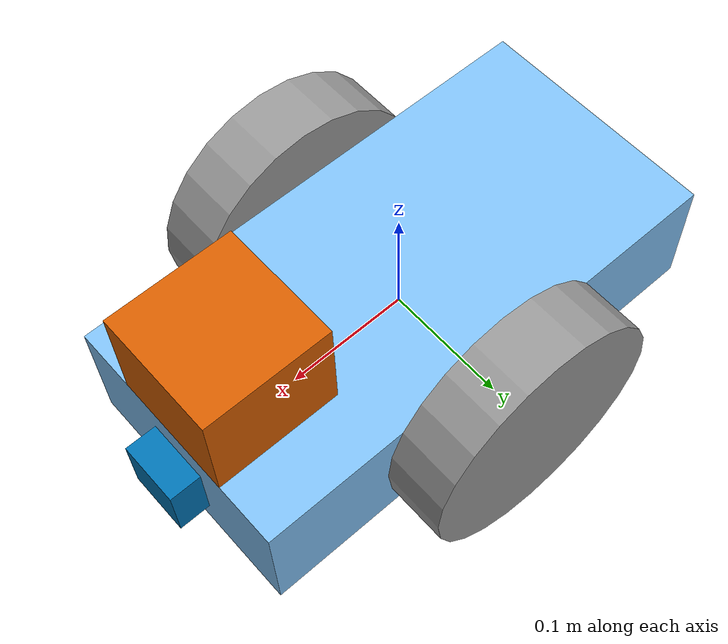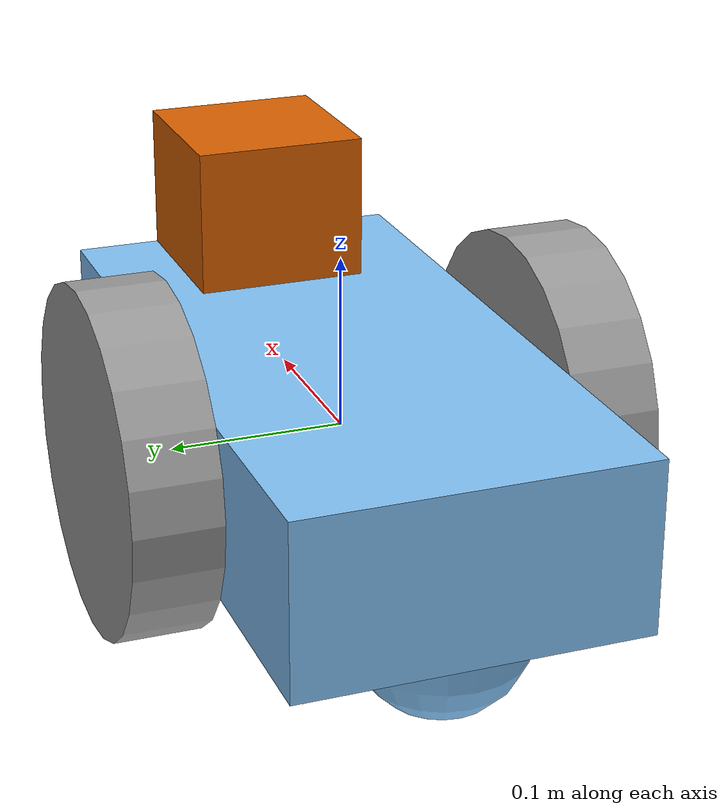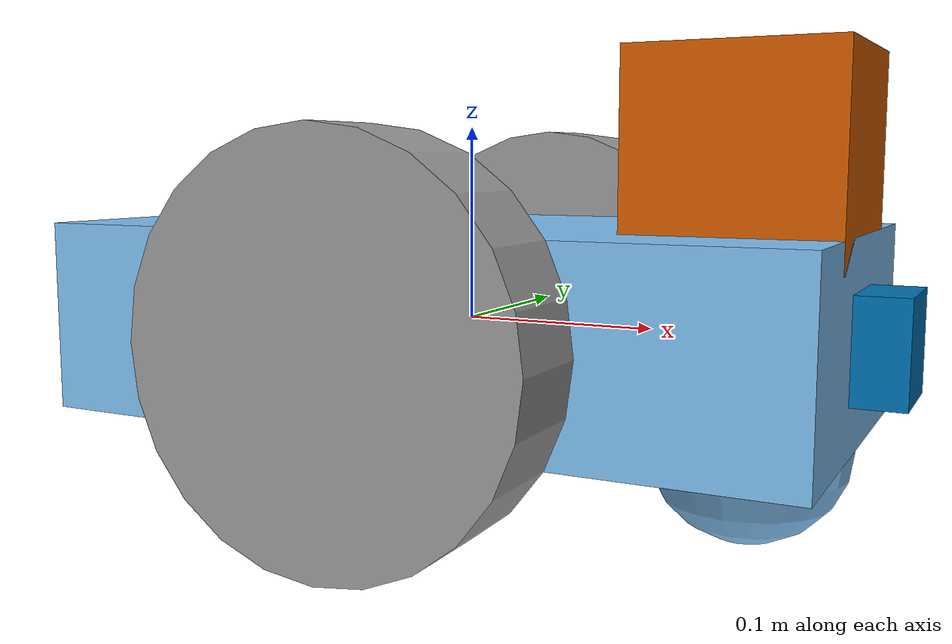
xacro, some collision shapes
<?xml version='1.0'?>

<robot name="track_robot" xmlns:xacro="http://www.ros.org/wiki/xacro">
<xacro:macro name="wheel" params="prefix x y z roll pitch yaw">
  <link name="${prefix}_wheel">
    <visual>
      <geometry>
        <cylinder radius="0.1" length="0.05"/>
      </geometry>
      <origin xyz="${x} ${y} ${z}" rpy=" ${roll} ${pitch} ${yaw}"/>
    </visual>
    <collision>
      <geometry>
        <cylinder radius="0.1" length="0.05"/>
      </geometry>
      <origin xyz="${x} ${y} ${z}" rpy=" ${roll} ${pitch} ${yaw}"/>
    </collision>
    <inertial>
     <mass value="5"/>
     <inertia ixx="0.1" ixy="0" ixz="0" iyy="0.1" iyz="0" izz="0.1"/>
    </inertial>
  </link>
  <gazebo reference="${prefix}_wheel">
    <material>Gazebo/Grey</material>
  </gazebo>
</xacro:macro>

<xacro:include filename="$(find track_robot)/urdf/track_robot.gazebo" />
  <link name="robot_footprint"></link>

  <joint name="robot_footprint_joint" type="fixed">
    <origin xyz="0 0 0" rpy="0 0 0" />
    <parent link="robot_footprint"/>
    <child link="chassis" />
  </joint>

  <link name='chassis'>
    <pose>0 0 0.1 0 0 0</pose>

    <inertial>
      <mass value="15.0"/>
      <origin xyz="0.0 0 0" rpy=" 0 0 0"/>
      <inertia
          ixx="0.1" ixy="0" ixz="0"
          iyy="0.1" iyz="0"
          izz="0.1"
      />
    </inertial>

    <collision name='collision'>
      <origin xyz="0 0 0" rpy=" 0 0 0"/>
      <geometry>
        <box size=".4 .2 .1"/>
      </geometry>
    </collision>

    <visual name='chassis_visual'>
      <origin xyz="0 0 0" rpy=" 0 0 0"/>
      <geometry>
        <box size=".4 .2 .1"/>
      </geometry>
    </visual>

    <collision name='back_caster_collision'>
      <origin xyz="-0.15 0 -0.05" rpy=" 0 0 0"/>
      <geometry>
        <sphere radius="0.0499"/>
      </geometry>
    </collision>

    <visual name='back_caster_visual'>
      <origin xyz="-0.15 0 -0.05" rpy=" 0 0 0"/>
      <geometry>
        <sphere radius="0.05"/>
      </geometry>
    </visual>

    <collision name='front_caster_collision'>
      <origin xyz="0.15 0 -0.05" rpy=" 0 0 0"/>
      <geometry>
        <sphere radius="0.0499"/>
      </geometry>
    </collision>

    <visual name='front_caster_visual'>
      <origin xyz="0.15 0 -0.05" rpy=" 0 0 0"/>
      <geometry>
        <sphere radius="0.05"/>
      </geometry>
    </visual>

  </link>
<xacro:wheel prefix="left" x="0" y="0" z="0" roll="0" pitch="1.5707" yaw="1.5707"/>
<joint name="left_wheel_hinge" type="continuous">
  <origin xyz="0 0.125 0" rpy="0 0 0"/>
  <child link="left_wheel"/>
  <parent link="chassis"/>
  <axis xyz="0 1 0" rpy="0 0 0"/>
  <limit effort="10000" velocity="1000"/>
  <dynamics damping="1.0" friction="1.0"/>
</joint>

<xacro:wheel prefix="right" x="0" y="0" z="0" roll="0" pitch="1.5707" yaw="1.5707"/>
<joint name="right_wheel_hinge" type="continuous">
  <origin xyz="0 -0.125 0" rpy="0 0 0"/>
  <child link="right_wheel"/>
  <parent link="chassis"/>
  <axis xyz="0 1 0" rpy="0 0 0"/>
  <limit effort="10000" velocity="1000"/>
  <dynamics damping="1.0" friction="1.0"/>
</joint>

<gazebo reference="chassis">
  <material>Gazebo/SkyBlue</material>
</gazebo>

<!-- camera link -->
<link name="camera">
	<visual>
		<origin xyz="0 0 0" rpy="0 0 0"/>
		<geometry>
			<box size="0.05 0.05 0.05"/>
		</geometry>
	</visual>
	<collision>
		<origin xyz="0 0 0" rpy="0 0 0"/>
		<geometry>
			<box size="0.05 0.05 0.05"/>
		</geometry>
	</collision>
	<inertial>
		<mass value="0.1"/>
		<inertia ixx="1e-6" ixy="0" ixz="0" iyy="1e-6" iyz="0" izz="1e-6" />
	</inertial>
</link>
<joint name="camera_joint" type="fixed">
	<origin xyz="0.2 0 0" rpy="0 0 0"/>
	<parent link="chassis"/>
	<child link="camera"/>
</joint>

<!-- laser link -->
<link name="hokuyo">
	<visual>
		<origin xyz="0 0 0" rpy="0 0 0"/>
		<geometry>
			<mesh filename="package://track_robot/meshes/hokuyo.dae" size="1 1 1"/>
		</geometry>
	</visual>
	<collision>
		<origin xyz="0 0 0" rpy="0 0 0"/>
		<geometry>
			<box size="0.1 0.1 0.1"/>
		</geometry>
	</collision>
	<inertial>
		<mass value="1e-5"/>
		<inertia ixx="1e-6" ixy="0" ixz="0" iyy="1e-6" iyz="0" izz="1e-6" />
	</inertial>
</link>
<joint name="hokuyo_joint" type="fixed">
	<origin xyz="0.15 0 0.085" rpy="0 0 0"/>
	<parent link="chassis"/>
	<child link="hokuyo"/>
</joint>
</robot>
